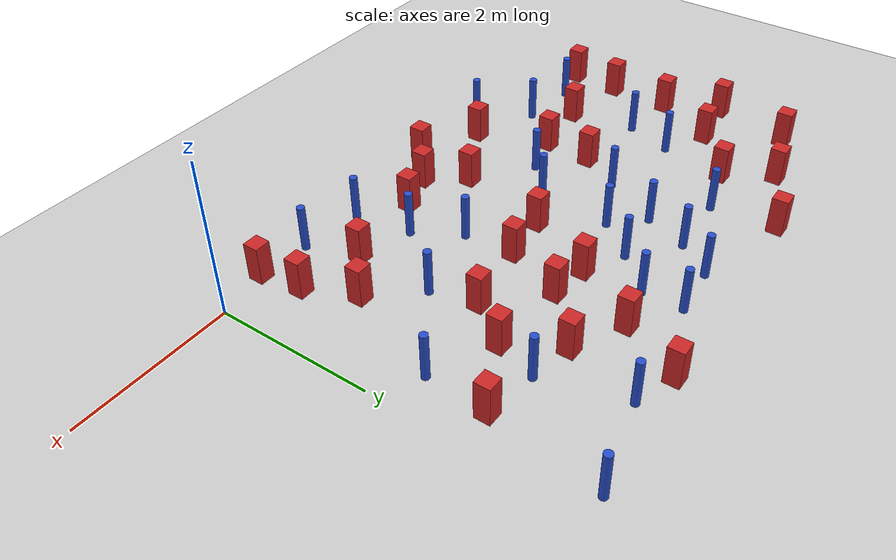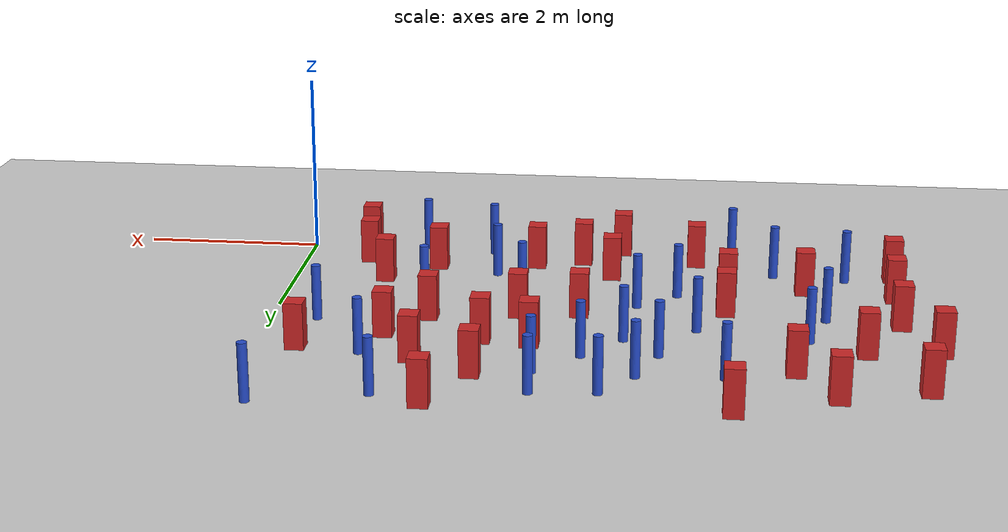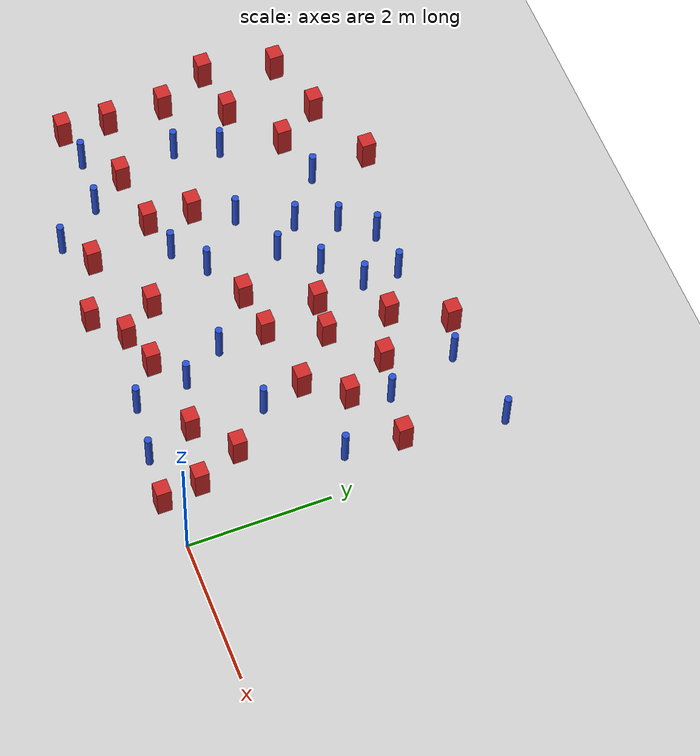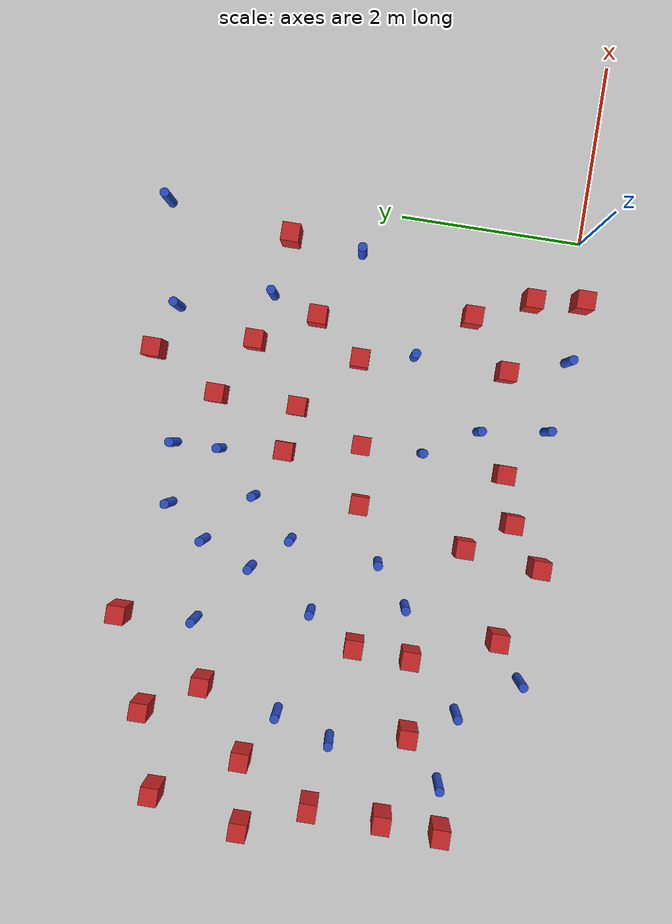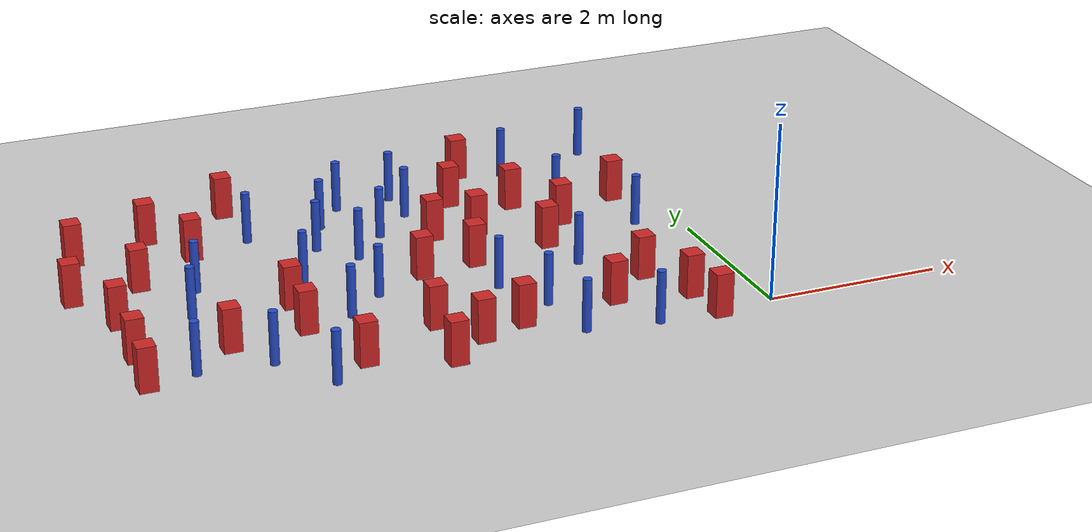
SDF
<sdf version="1.6">
 <world name="default">
  <model name="ground_plane">
   <static>1</static>
   <link name="link">
    <collision name="collision">
     <geometry><plane><normal>0 0 1</normal><size>100 100</size></plane></geometry>
     <surface><friction><ode><mu>100</mu><mu2>50</mu2></ode></friction></surface>
    </collision>
    <visual name="visual">
     <cast_shadows>0</cast_shadows>
     <geometry><plane><normal>0 0 1</normal><size>100 100</size></plane></geometry>
     <material>
      <ambient>1.0 1.0 1.0 1.0</ambient>
      <diffuse>0.8 0.8 0.8 1.0</diffuse>
      <specular>0.01 0.01 0.01 1.000000</specular>
     </material>
    </visual>
   </link>
  </model>
  <model name="pole_obstacle3">
   <static>true</static>
   <pose>-4.10674583916 3.05079004273 2.88873142074e-08 -9.90536690245e-09 4.6021994898e-07 -1.20965994966e-07</pose>
   <link name="link">
    <pose>0 0 0.3 0 -0 0</pose>
    <inertial>
     <mass>1</mass>
     <inertia><ixx>0.145833</ixx><ixy>0</ixy><ixz>0</ixz><iyy>0.145833</iyy><iyz>0</iyz><izz>0.125</izz></inertia>
    </inertial>
    <collision name="collision">
     <geometry><cylinder><radius>0.05</radius><length>.6</length></cylinder></geometry>
    </collision>
    <visual name="visual">
     <geometry><cylinder><radius>0.05</radius><length>.6</length></cylinder></geometry>
     <material>
      <script><name>Gazebo/Blue</name><uri>file://media/materials/scripts/gazebo.material</uri></script>
     </material>
    </visual>
   </link>
  </model>
  <model name="square_post_obstacle6">
   <static>true</static>
   <pose>-0.735743962534 0.444639540895 8.22691968438e-08 7.22125133819e-06 -7.54495500217e-07 2.29674213826e-05</pose>
   <link name="link">
    <pose>0 0 0.25 0 -0 0</pose>
    <inertial>
     <mass>100</mass>
     <inertia>
      <ixx>0.166667</ixx>
      <ixy>0</ixy>
      <ixz>0</ixz>
      <iyy>0.166667</iyy>
      <iyz>0</iyz>
      <izz>0.166667</izz>
     </inertia>
    </inertial>
    <collision name="collision"><geometry><box><size>.2 .2 .5</size></box></geometry></collision>
    <visual name="visual">
     <geometry><box><size>.2 .2 .5</size></box></geometry>
     <material>
      <script><name>Gazebo/Red</name><uri>file://media/materials/scripts/gazebo.material</uri></script>
     </material>
    </visual>
   </link>
  </model>
  <model name="pole_obstacle18">
   <static>true</static>
   <pose>-1.53342866572 1.62815825312 2.88873142074e-08 -9.90536689672e-09 4.60219948993e-07 -1.20965994959e-07</pose>
   <link name="link">
    <pose>0 0 0.3 0 -0 0</pose>
    <inertial>
     <mass>1</mass>
     <inertia><ixx>0.145833</ixx><ixy>0</ixy><ixz>0</ixz><iyy>0.145833</iyy><iyz>0</iyz><izz>0.125</izz></inertia>
    </inertial>
    <collision name="collision">
     <geometry><cylinder><radius>0.05</radius><length>.6</length></cylinder></geometry>
    </collision>
    <visual name="visual">
     <geometry><cylinder><radius>0.05</radius><length>.6</length></cylinder></geometry>
     <material>
      <script><name>Gazebo/Blue</name><uri>file://media/materials/scripts/gazebo.material</uri></script>
     </material>
    </visual>
   </link>
  </model>
  <model name="square_post_obstacle16">
   <static>true</static>
   <pose>-1.63647369609 3.38660637398 8.22691968438e-08 7.2212513382e-06 -7.54495500217e-07 2.29674213826e-05</pose>
   <link name="link">
    <pose>0 0 0.25 0 -0 0</pose>
    <inertial>
     <mass>100</mass>
     <inertia>
      <ixx>0.166667</ixx>
      <ixy>0</ixy>
      <ixz>0</ixz>
      <iyy>0.166667</iyy>
      <iyz>0</iyz>
      <izz>0.166667</izz>
     </inertia>
    </inertial>
    <collision name="collision"><geometry><box><size>.2 .2 .5</size></box></geometry></collision>
    <visual name="visual">
     <geometry><box><size>.2 .2 .5</size></box></geometry>
     <material>
      <script><name>Gazebo/Red</name><uri>file://media/materials/scripts/gazebo.material</uri></script>
     </material>
    </visual>
   </link>
  </model>
  <model name="pole_obstacle23">
   <static>true</static>
   <pose>-2.13196172156 0.0598625414615 2.88873142074e-08 -9.905366921e-09 4.60219948936e-07 -1.20965994985e-07</pose>
   <link name="link">
    <pose>0 0 0.3 0 -0 0</pose>
    <inertial>
     <mass>1</mass>
     <inertia><ixx>0.145833</ixx><ixy>0</ixy><ixz>0</ixz><iyy>0.145833</iyy><iyz>0</iyz><izz>0.125</izz></inertia>
    </inertial>
    <collision name="collision">
     <geometry><cylinder><radius>0.05</radius><length>.6</length></cylinder></geometry>
    </collision>
    <visual name="visual">
     <geometry><cylinder><radius>0.05</radius><length>.6</length></cylinder></geometry>
     <material>
      <script><name>Gazebo/Blue</name><uri>file://media/materials/scripts/gazebo.material</uri></script>
     </material>
    </visual>
   </link>
  </model>
  <model name="square_post_obstacle18">
   <static>true</static>
   <pose>-0.437730830458 3.17416483914 8.22691968438e-08 7.2212513382e-06 -7.54495500217e-07 2.29674213826e-05</pose>
   <link name="link">
    <pose>0 0 0.25 0 -0 0</pose>
    <inertial>
     <mass>100</mass>
     <inertia>
      <ixx>0.166667</ixx>
      <ixy>0</ixy>
      <ixz>0</ixz>
      <iyy>0.166667</iyy>
      <iyz>0</iyz>
      <izz>0.166667</izz>
     </inertia>
    </inertial>
    <collision name="collision"><geometry><box><size>.2 .2 .5</size></box></geometry></collision>
    <visual name="visual">
     <geometry><box><size>.2 .2 .5</size></box></geometry>
     <material>
      <script><name>Gazebo/Red</name><uri>file://media/materials/scripts/gazebo.material</uri></script>
     </material>
    </visual>
   </link>
  </model>
  <model name="pole_obstacle27">
   <static>true</static>
   <pose>-3.32773797094 3.13521711102 2.88873142074e-08 -9.90536689597e-09 4.60219948995e-07 -1.20965994957e-07</pose>
   <link name="link">
    <pose>0 0 0.3 0 -0 0</pose>
    <inertial>
     <mass>1</mass>
     <inertia><ixx>0.145833</ixx><ixy>0</ixy><ixz>0</ixz><iyy>0.145833</iyy><iyz>0</iyz><izz>0.125</izz></inertia>
    </inertial>
    <collision name="collision">
     <geometry><cylinder><radius>0.05</radius><length>.6</length></cylinder></geometry>
    </collision>
    <visual name="visual">
     <geometry><cylinder><radius>0.05</radius><length>.6</length></cylinder></geometry>
     <material>
      <script><name>Gazebo/Blue</name><uri>file://media/materials/scripts/gazebo.material</uri></script>
     </material>
    </visual>
   </link>
  </model>
  <model name="pole_obstacle28">
   <static>true</static>
   <pose>-3.73848227243 2.66122329755 2.88873142074e-08 -9.90536690232e-09 4.6021994898e-07 -1.20965994968e-07</pose>
   <link name="link">
    <pose>0 0 0.3 0 -0 0</pose>
    <inertial>
     <mass>1</mass>
     <inertia><ixx>0.145833</ixx><ixy>0</ixy><ixz>0</ixz><iyy>0.145833</iyy><iyz>0</iyz><izz>0.125</izz></inertia>
    </inertial>
    <collision name="collision">
     <geometry><cylinder><radius>0.05</radius><length>.6</length></cylinder></geometry>
    </collision>
    <visual name="visual">
     <geometry><cylinder><radius>0.05</radius><length>.6</length></cylinder></geometry>
     <material>
      <script><name>Gazebo/Blue</name><uri>file://media/materials/scripts/gazebo.material</uri></script>
     </material>
    </visual>
   </link>
  </model>
  <model name="pole_obstacle32">
   <static>true</static>
   <pose>-1.09983898495 3.27370985096 2.88873142074e-08 -9.90536689791e-09 4.6021994899e-07 -1.20965994959e-07</pose>
   <link name="link">
    <pose>0 0 0.3 0 -0 0</pose>
    <inertial>
     <mass>1</mass>
     <inertia><ixx>0.145833</ixx><ixy>0</ixy><ixz>0</ixz><iyy>0.145833</iyy><iyz>0</iyz><izz>0.125</izz></inertia>
    </inertial>
    <collision name="collision">
     <geometry><cylinder><radius>0.05</radius><length>.6</length></cylinder></geometry>
    </collision>
    <visual name="visual">
     <geometry><cylinder><radius>0.05</radius><length>.6</length></cylinder></geometry>
     <material>
      <script><name>Gazebo/Blue</name><uri>file://media/materials/scripts/gazebo.material</uri></script>
     </material>
    </visual>
   </link>
  </model>
  <model name="square_post_obstacle30">
   <static>true</static>
   <pose>-5.45220283044 3.37960978161 8.22691968438e-08 7.2212513382e-06 -7.54495500217e-07 2.29674213826e-05</pose>
   <link name="link">
    <pose>0 0 0.25 0 -0 0</pose>
    <inertial>
     <mass>100</mass>
     <inertia>
      <ixx>0.166667</ixx>
      <ixy>0</ixy>
      <ixz>0</ixz>
      <iyy>0.166667</iyy>
      <iyz>0</iyz>
      <izz>0.166667</izz>
     </inertia>
    </inertial>
    <collision name="collision"><geometry><box><size>.2 .2 .5</size></box></geometry></collision>
    <visual name="visual">
     <geometry><box><size>.2 .2 .5</size></box></geometry>
     <material>
      <script><name>Gazebo/Red</name><uri>file://media/materials/scripts/gazebo.material</uri></script>
     </material>
    </visual>
   </link>
  </model>
  <model name="pole_obstacle39">
   <static>true</static>
   <pose>-3.84629963478 1.67471542373 2.88873142074e-08 -9.90536691123e-09 4.60219948959e-07 -1.20965994982e-07</pose>
   <link name="link">
    <pose>0 0 0.3 0 -0 0</pose>
    <inertial>
     <mass>1</mass>
     <inertia><ixx>0.145833</ixx><ixy>0</ixy><ixz>0</ixz><iyy>0.145833</iyy><iyz>0</iyz><izz>0.125</izz></inertia>
    </inertial>
    <collision name="collision">
     <geometry><cylinder><radius>0.05</radius><length>.6</length></cylinder></geometry>
    </collision>
    <visual name="visual">
     <geometry><cylinder><radius>0.05</radius><length>.6</length></cylinder></geometry>
     <material>
      <script><name>Gazebo/Blue</name><uri>file://media/materials/scripts/gazebo.material</uri></script>
     </material>
    </visual>
   </link>
  </model>
  <model name="pole_obstacle45">
   <static>true</static>
   <pose>-0.49435911622 2.37617971023 2.88873142074e-08 -9.90536689335e-09 4.60219949001e-07 -1.20965994953e-07</pose>
   <link name="link">
    <pose>0 0 0.3 0 -0 0</pose>
    <inertial>
     <mass>1</mass>
     <inertia><ixx>0.145833</ixx><ixy>0</ixy><ixz>0</ixz><iyy>0.145833</iyy><iyz>0</iyz><izz>0.125</izz></inertia>
    </inertial>
    <collision name="collision">
     <geometry><cylinder><radius>0.05</radius><length>.6</length></cylinder></geometry>
    </collision>
    <visual name="visual">
     <geometry><cylinder><radius>0.05</radius><length>.6</length></cylinder></geometry>
     <material>
      <script><name>Gazebo/Blue</name><uri>file://media/materials/scripts/gazebo.material</uri></script>
     </material>
    </visual>
   </link>
  </model>
  <model name="pole_obstacle46">
   <static>true</static>
   <pose>-4.88841886065 -0.0654090124755 2.88873142074e-08 -9.90536689153e-09 4.60219949006e-07 -1.20965994951e-07</pose>
   <link name="link">
    <pose>0 0 0.3 0 -0 0</pose>
    <inertial>
     <mass>1</mass>
     <inertia><ixx>0.145833</ixx><ixy>0</ixy><ixz>0</ixz><iyy>0.145833</iyy><iyz>0</iyz><izz>0.125</izz></inertia>
    </inertial>
    <collision name="collision">
     <geometry><cylinder><radius>0.05</radius><length>.6</length></cylinder></geometry>
    </collision>
    <visual name="visual">
     <geometry><cylinder><radius>0.05</radius><length>.6</length></cylinder></geometry>
     <material>
      <script><name>Gazebo/Blue</name><uri>file://media/materials/scripts/gazebo.material</uri></script>
     </material>
    </visual>
   </link>
  </model>
  <model name="square_post_obstacle38">
   <static>true</static>
   <pose>-2.67124182964 0.458269744932 8.22691968438e-08 7.2212513382e-06 -7.54495500217e-07 2.29674213826e-05</pose>
   <link name="link">
    <pose>0 0 0.25 0 -0 0</pose>
    <inertial>
     <mass>100</mass>
     <inertia>
      <ixx>0.166667</ixx>
      <ixy>0</ixy>
      <ixz>0</ixz>
      <iyy>0.166667</iyy>
      <iyz>0</iyz>
      <izz>0.166667</izz>
     </inertia>
    </inertial>
    <collision name="collision"><geometry><box><size>.2 .2 .5</size></box></geometry></collision>
    <visual name="visual">
     <geometry><box><size>.2 .2 .5</size></box></geometry>
     <material>
      <script><name>Gazebo/Red</name><uri>file://media/materials/scripts/gazebo.material</uri></script>
     </material>
    </visual>
   </link>
  </model>
  <model name="pole_obstacle53">
   <static>true</static>
   <pose>-2.58020359155 1.38475533536 2.88873142074e-08 -9.90536689395e-09 4.60219949e-07 -1.20965994953e-07</pose>
   <link name="link">
    <pose>0 0 0.3 0 -0 0</pose>
    <inertial>
     <mass>1</mass>
     <inertia><ixx>0.145833</ixx><ixy>0</ixy><ixz>0</ixz><iyy>0.145833</iyy><iyz>0</iyz><izz>0.125</izz></inertia>
    </inertial>
    <collision name="collision">
     <geometry><cylinder><radius>0.05</radius><length>.6</length></cylinder></geometry>
    </collision>
    <visual name="visual">
     <geometry><cylinder><radius>0.05</radius><length>.6</length></cylinder></geometry>
     <material>
      <script><name>Gazebo/Blue</name><uri>file://media/materials/scripts/gazebo.material</uri></script>
     </material>
    </visual>
   </link>
  </model>
  <model name="square_post_obstacle43">
   <static>true</static>
   <pose>-6.93882678375 2.72785230676 8.22691968438e-08 7.2212513382e-06 -7.54495500217e-07 2.29674213826e-05</pose>
   <link name="link">
    <pose>0 0 0.25 0 -0 0</pose>
    <inertial>
     <mass>100</mass>
     <inertia>
      <ixx>0.166667</ixx>
      <ixy>0</ixy>
      <ixz>0</ixz>
      <iyy>0.166667</iyy>
      <iyz>0</iyz>
      <izz>0.166667</izz>
     </inertia>
    </inertial>
    <collision name="collision"><geometry><box><size>.2 .2 .5</size></box></geometry></collision>
    <visual name="visual">
     <geometry><box><size>.2 .2 .5</size></box></geometry>
     <material>
      <script><name>Gazebo/Red</name><uri>file://media/materials/scripts/gazebo.material</uri></script>
     </material>
    </visual>
   </link>
  </model>
  <model name="pole_obstacle60">
   <static>true</static>
   <pose>-1.38868517463 4.28813172628 2.88873142074e-08 -9.90536689852e-09 4.60219948989e-07 -1.2096599496e-07</pose>
   <link name="link">
    <pose>0 0 0.3 0 -0 0</pose>
    <inertial>
     <mass>1</mass>
     <inertia><ixx>0.145833</ixx><ixy>0</ixy><ixz>0</ixz><iyy>0.145833</iyy><iyz>0</iyz><izz>0.125</izz></inertia>
    </inertial>
    <collision name="collision">
     <geometry><cylinder><radius>0.05</radius><length>.6</length></cylinder></geometry>
    </collision>
    <visual name="visual">
     <geometry><cylinder><radius>0.05</radius><length>.6</length></cylinder></geometry>
     <material>
      <script><name>Gazebo/Blue</name><uri>file://media/materials/scripts/gazebo.material</uri></script>
     </material>
    </visual>
   </link>
  </model>
  <model name="square_post_obstacle51">
   <static>true</static>
   <pose>-2.59960331723 2.05706593204 8.22691968438e-08 7.2212513382e-06 -7.54495500217e-07 2.29674213826e-05</pose>
   <link name="link">
    <pose>0 0 0.25 0 -0 0</pose>
    <inertial>
     <mass>100</mass>
     <inertia>
      <ixx>0.166667</ixx>
      <ixy>0</ixy>
      <ixz>0</ixz>
      <iyy>0.166667</iyy>
      <iyz>0</iyz>
      <izz>0.166667</izz>
     </inertia>
    </inertial>
    <collision name="collision"><geometry><box><size>.2 .2 .5</size></box></geometry></collision>
    <visual name="visual">
     <geometry><box><size>.2 .2 .5</size></box></geometry>
     <material>
      <script><name>Gazebo/Red</name><uri>file://media/materials/scripts/gazebo.material</uri></script>
     </material>
    </visual>
   </link>
  </model>
  <model name="square_post_obstacle57">
   <static>true</static>
   <pose>-6.62308805226 1.19896967594 8.22691968438e-08 7.2212513382e-06 -7.54495500217e-07 2.29674213826e-05</pose>
   <link name="link">
    <pose>0 0 0.25 0 -0 0</pose>
    <inertial>
     <mass>100</mass>
     <inertia>
      <ixx>0.166667</ixx>
      <ixy>0</ixy>
      <ixz>0</ixz>
      <iyy>0.166667</iyy>
      <iyz>0</iyz>
      <izz>0.166667</izz>
     </inertia>
    </inertial>
    <collision name="collision"><geometry><box><size>.2 .2 .5</size></box></geometry></collision>
    <visual name="visual">
     <geometry><box><size>.2 .2 .5</size></box></geometry>
     <material>
      <script><name>Gazebo/Red</name><uri>file://media/materials/scripts/gazebo.material</uri></script>
     </material>
    </visual>
   </link>
  </model>
  <model name="square_post_obstacle63">
   <static>true</static>
   <pose>-5.65913044894 1.05992409231 8.22691968438e-08 7.2212513382e-06 -7.54495500217e-07 2.29674213826e-05</pose>
   <link name="link">
    <pose>0 0 0.25 0 -0 0</pose>
    <inertial>
     <mass>100</mass>
     <inertia>
      <ixx>0.166667</ixx>
      <ixy>0</ixy>
      <ixz>0</ixz>
      <iyy>0.166667</iyy>
      <iyz>0</iyz>
      <izz>0.166667</izz>
     </inertia>
    </inertial>
    <collision name="collision"><geometry><box><size>.2 .2 .5</size></box></geometry></collision>
    <visual name="visual">
     <geometry><box><size>.2 .2 .5</size></box></geometry>
     <material>
      <script><name>Gazebo/Red</name><uri>file://media/materials/scripts/gazebo.material</uri></script>
     </material>
    </visual>
   </link>
  </model>
  <model name="pole_obstacle76">
   <static>true</static>
   <pose>-2.247932141 0.802965704009 2.88873142074e-08 -9.90536689285e-09 4.60219949002e-07 -1.20965994953e-07</pose>
   <link name="link">
    <pose>0 0 0.3 0 -0 0</pose>
    <inertial>
     <mass>1</mass>
     <inertia><ixx>0.145833</ixx><ixy>0</ixy><ixz>0</ixz><iyy>0.145833</iyy><iyz>0</iyz><izz>0.125</izz></inertia>
    </inertial>
    <collision name="collision">
     <geometry><cylinder><radius>0.05</radius><length>.6</length></cylinder></geometry>
    </collision>
    <visual name="visual">
     <geometry><cylinder><radius>0.05</radius><length>.6</length></cylinder></geometry>
     <material>
      <script><name>Gazebo/Blue</name><uri>file://media/materials/scripts/gazebo.material</uri></script>
     </material>
    </visual>
   </link>
  </model>
  <model name="square_post_obstacle66">
   <static>true</static>
   <pose>-4.82388583449 4.39651531097 8.22691968438e-08 7.2212513382e-06 -7.54495500217e-07 2.29674213826e-05</pose>
   <link name="link">
    <pose>0 0 0.25 0 -0 0</pose>
    <inertial>
     <mass>100</mass>
     <inertia>
      <ixx>0.166667</ixx>
      <ixy>0</ixy>
      <ixz>0</ixz>
      <iyy>0.166667</iyy>
      <iyz>0</iyz>
      <izz>0.166667</izz>
     </inertia>
    </inertial>
    <collision name="collision"><geometry><box><size>.2 .2 .5</size></box></geometry></collision>
    <visual name="visual">
     <geometry><box><size>.2 .2 .5</size></box></geometry>
     <material>
      <script><name>Gazebo/Red</name><uri>file://media/materials/scripts/gazebo.material</uri></script>
     </material>
    </visual>
   </link>
  </model>
  <model name="pole_obstacle78">
   <static>true</static>
   <pose>-6.12994960305 0.644760309245 2.88873142074e-08 -9.90536689837e-09 4.60219948989e-07 -1.2096599496e-07</pose>
   <link name="link">
    <pose>0 0 0.3 0 -0 0</pose>
    <inertial>
     <mass>1</mass>
     <inertia><ixx>0.145833</ixx><ixy>0</ixy><ixz>0</ixz><iyy>0.145833</iyy><iyz>0</iyz><izz>0.125</izz></inertia>
    </inertial>
    <collision name="collision">
     <geometry><cylinder><radius>0.05</radius><length>.6</length></cylinder></geometry>
    </collision>
    <visual name="visual">
     <geometry><cylinder><radius>0.05</radius><length>.6</length></cylinder></geometry>
     <material>
      <script><name>Gazebo/Blue</name><uri>file://media/materials/scripts/gazebo.material</uri></script>
     </material>
    </visual>
   </link>
  </model>
  <model name="square_post_obstacle71">
   <static>true</static>
   <pose>-6.18642034534 2.82569942338 8.22691968438e-08 7.2212513382e-06 -7.54495500217e-07 2.29674213826e-05</pose>
   <link name="link">
    <pose>0 0 0.25 0 -0 0</pose>
    <inertial>
     <mass>100</mass>
     <inertia>
      <ixx>0.166667</ixx>
      <ixy>0</ixy>
      <ixz>0</ixz>
      <iyy>0.166667</iyy>
      <iyz>0</iyz>
      <izz>0.166667</izz>
     </inertia>
    </inertial>
    <collision name="collision"><geometry><box><size>.2 .2 .5</size></box></geometry></collision>
    <visual name="visual">
     <geometry><box><size>.2 .2 .5</size></box></geometry>
     <material>
      <script><name>Gazebo/Red</name><uri>file://media/materials/scripts/gazebo.material</uri></script>
     </material>
    </visual>
   </link>
  </model>
  <model name="pole_obstacle86">
   <static>true</static>
   <pose>-0.249711931008 4.56645546046 2.88873142074e-08 -9.90536689703e-09 4.60219948992e-07 -1.20965994959e-07</pose>
   <link name="link">
    <pose>0 0 0.3 0 -0 0</pose>
    <inertial>
     <mass>1</mass>
     <inertia><ixx>0.145833</ixx><ixy>0</ixy><ixz>0</ixz><iyy>0.145833</iyy><iyz>0</iyz><izz>0.125</izz></inertia>
    </inertial>
    <collision name="collision">
     <geometry><cylinder><radius>0.05</radius><length>.6</length></cylinder></geometry>
    </collision>
    <visual name="visual">
     <geometry><cylinder><radius>0.05</radius><length>.6</length></cylinder></geometry>
     <material>
      <script><name>Gazebo/Blue</name><uri>file://media/materials/scripts/gazebo.material</uri></script>
     </material>
    </visual>
   </link>
  </model>
  <model name="square_post_obstacle75">
   <static>true</static>
   <pose>-6.60966170065 2.01193946252 8.22691968438e-08 7.2212513382e-06 -7.54495500217e-07 2.29674213826e-05</pose>
   <link name="link">
    <pose>0 0 0.25 0 -0 0</pose>
    <inertial>
     <mass>100</mass>
     <inertia>
      <ixx>0.166667</ixx>
      <ixy>0</ixy>
      <ixz>0</ixz>
      <iyy>0.166667</iyy>
      <iyz>0</iyz>
      <izz>0.166667</izz>
     </inertia>
    </inertial>
    <collision name="collision"><geometry><box><size>.2 .2 .5</size></box></geometry></collision>
    <visual name="visual">
     <geometry><box><size>.2 .2 .5</size></box></geometry>
     <material>
      <script><name>Gazebo/Red</name><uri>file://media/materials/scripts/gazebo.material</uri></script>
     </material>
    </visual>
   </link>
  </model>
  <model name="pole_obstacle90">
   <static>true</static>
   <pose>-4.7634091951 3.56525711923 2.88873142074e-08 -9.90536690245e-09 4.6021994898e-07 -1.20965994966e-07</pose>
   <link name="link">
    <pose>0 0 0.3 0 -0 0</pose>
    <inertial>
     <mass>1</mass>
     <inertia><ixx>0.145833</ixx><ixy>0</ixy><ixz>0</ixz><iyy>0.145833</iyy><iyz>0</iyz><izz>0.125</izz></inertia>
    </inertial>
    <collision name="collision">
     <geometry><cylinder><radius>0.05</radius><length>.6</length></cylinder></geometry>
    </collision>
    <visual name="visual">
     <geometry><cylinder><radius>0.05</radius><length>.6</length></cylinder></geometry>
     <material>
      <script><name>Gazebo/Blue</name><uri>file://media/materials/scripts/gazebo.material</uri></script>
     </material>
    </visual>
   </link>
  </model>
  <model name="pole_obstacle95">
   <static>true</static>
   <pose>-4.27576008164 1.30549020211 2.88873142074e-08 -9.90536689445e-09 4.60219948999e-07 -1.20965994956e-07</pose>
   <link name="link">
    <pose>0 0 0.3 0 -0 0</pose>
    <inertial>
     <mass>1</mass>
     <inertia><ixx>0.145833</ixx><ixy>0</ixy><ixz>0</ixz><iyy>0.145833</iyy><iyz>0</iyz><izz>0.125</izz></inertia>
    </inertial>
    <collision name="collision">
     <geometry><cylinder><radius>0.05</radius><length>.6</length></cylinder></geometry>
    </collision>
    <visual name="visual">
     <geometry><cylinder><radius>0.05</radius><length>.6</length></cylinder></geometry>
     <material>
      <script><name>Gazebo/Blue</name><uri>file://media/materials/scripts/gazebo.material</uri></script>
     </material>
    </visual>
   </link>
  </model>
  <model name="square_post_obstacle88">
   <static>true</static>
   <pose>-6.66203473205 0.542781461975 8.22691968438e-08 7.22125133819e-06 -7.54495500217e-07 2.29674213826e-05</pose>
   <link name="link">
    <pose>0 0 0.25 0 -0 0</pose>
    <inertial>
     <mass>100</mass>
     <inertia>
      <ixx>0.166667</ixx>
      <ixy>0</ixy>
      <ixz>0</ixz>
      <iyy>0.166667</iyy>
      <iyz>0</iyz>
      <izz>0.166667</izz>
     </inertia>
    </inertial>
    <collision name="collision"><geometry><box><size>.2 .2 .5</size></box></geometry></collision>
    <visual name="visual">
     <geometry><box><size>.2 .2 .5</size></box></geometry>
     <material>
      <script><name>Gazebo/Red</name><uri>file://media/materials/scripts/gazebo.material</uri></script>
     </material>
    </visual>
   </link>
  </model>
  <model name="square_post_obstacle100">
   <static>true</static>
   <pose>-1.26960463572 2.74692913427 8.22691968438e-08 7.2212513382e-06 -7.54495500217e-07 2.29674213826e-05</pose>
   <link name="link">
    <pose>0 0 0.25 0 -0 0</pose>
    <inertial>
     <mass>100</mass>
     <inertia>
      <ixx>0.166667</ixx>
      <ixy>0</ixy>
      <ixz>0</ixz>
      <iyy>0.166667</iyy>
      <iyz>0</iyz>
      <izz>0.166667</izz>
     </inertia>
    </inertial>
    <collision name="collision"><geometry><box><size>.2 .2 .5</size></box></geometry></collision>
    <visual name="visual">
     <geometry><box><size>.2 .2 .5</size></box></geometry>
     <material>
      <script><name>Gazebo/Red</name><uri>file://media/materials/scripts/gazebo.material</uri></script>
     </material>
    </visual>
   </link>
  </model>
  <model name="square_post_obstacle105">
   <static>true</static>
   <pose>-1.89715746914 4.46829815455 8.22691968438e-08 7.2212513382e-06 -7.54495500217e-07 2.29674213826e-05</pose>
   <link name="link">
    <pose>0 0 0.25 0 -0 0</pose>
    <inertial>
     <mass>100</mass>
     <inertia>
      <ixx>0.166667</ixx>
      <ixy>0</ixy>
      <ixz>0</ixz>
      <iyy>0.166667</iyy>
      <iyz>0</iyz>
      <izz>0.166667</izz>
     </inertia>
    </inertial>
    <collision name="collision"><geometry><box><size>.2 .2 .5</size></box></geometry></collision>
    <visual name="visual">
     <geometry><box><size>.2 .2 .5</size></box></geometry>
     <material>
      <script><name>Gazebo/Red</name><uri>file://media/materials/scripts/gazebo.material</uri></script>
     </material>
    </visual>
   </link>
  </model>
  <model name="pole_obstacle114">
   <static>true</static>
   <pose>-5.3416488193 0.571486314073 2.88873142074e-08 -9.90536689837e-09 4.60219948989e-07 -1.2096599496e-07</pose>
   <link name="link">
    <pose>0 0 0.3 0 -0 0</pose>
    <inertial>
     <mass>1</mass>
     <inertia><ixx>0.145833</ixx><ixy>0</ixy><ixz>0</ixz><iyy>0.145833</iyy><iyz>0</iyz><izz>0.125</izz></inertia>
    </inertial>
    <collision name="collision">
     <geometry><cylinder><radius>0.05</radius><length>.6</length></cylinder></geometry>
    </collision>
    <visual name="visual">
     <geometry><cylinder><radius>0.05</radius><length>.6</length></cylinder></geometry>
     <material>
      <script><name>Gazebo/Blue</name><uri>file://media/materials/scripts/gazebo.material</uri></script>
     </material>
    </visual>
   </link>
  </model>
  <model name="pole_obstacle115">
   <static>true</static>
   <pose>-2.88422750433 4.09584179187 2.88873142074e-08 -9.90536689859e-09 4.60219948989e-07 -1.20965994961e-07</pose>
   <link name="link">
    <pose>0 0 0.3 0 -0 0</pose>
    <inertial>
     <mass>1</mass>
     <inertia><ixx>0.145833</ixx><ixy>0</ixy><ixz>0</ixz><iyy>0.145833</iyy><iyz>0</iyz><izz>0.125</izz></inertia>
    </inertial>
    <collision name="collision">
     <geometry><cylinder><radius>0.05</radius><length>.6</length></cylinder></geometry>
    </collision>
    <visual name="visual">
     <geometry><cylinder><radius>0.05</radius><length>.6</length></cylinder></geometry>
     <material>
      <script><name>Gazebo/Blue</name><uri>file://media/materials/scripts/gazebo.material</uri></script>
     </material>
    </visual>
   </link>
  </model>
  <model name="square_post_obstacle112">
   <static>true</static>
   <pose>-3.1901020987 0.289295298862 8.22691968438e-08 7.2212513382e-06 -7.54495500217e-07 2.29674213826e-05</pose>
   <link name="link">
    <pose>0 0 0.25 0 -0 0</pose>
    <inertial>
     <mass>100</mass>
     <inertia>
      <ixx>0.166667</ixx>
      <ixy>0</ixy>
      <ixz>0</ixz>
      <iyy>0.166667</iyy>
      <iyz>0</iyz>
      <izz>0.166667</izz>
     </inertia>
    </inertial>
    <collision name="collision"><geometry><box><size>.2 .2 .5</size></box></geometry></collision>
    <visual name="visual">
     <geometry><box><size>.2 .2 .5</size></box></geometry>
     <material>
      <script><name>Gazebo/Red</name><uri>file://media/materials/scripts/gazebo.material</uri></script>
     </material>
    </visual>
   </link>
  </model>
  <model name="pole_obstacle123">
   <static>true</static>
   <pose>-3.54899356851 4.04159951886 2.88873142074e-08 -9.90536689848e-09 4.60219948989e-07 -1.20965994961e-07</pose>
   <link name="link">
    <pose>0 0 0.3 0 -0 0</pose>
    <inertial>
     <mass>1</mass>
     <inertia><ixx>0.145833</ixx><ixy>0</ixy><ixz>0</ixz><iyy>0.145833</iyy><iyz>0</iyz><izz>0.125</izz></inertia>
    </inertial>
    <collision name="collision">
     <geometry><cylinder><radius>0.05</radius><length>.6</length></cylinder></geometry>
    </collision>
    <visual name="visual">
     <geometry><cylinder><radius>0.05</radius><length>.6</length></cylinder></geometry>
     <material>
      <script><name>Gazebo/Blue</name><uri>file://media/materials/scripts/gazebo.material</uri></script>
     </material>
    </visual>
   </link>
  </model>
  <model name="square_post_obstacle126">
   <static>true</static>
   <pose>-2.28479332848 2.81382406977 8.22691968438e-08 7.2212513382e-06 -7.54495500217e-07 2.29674213826e-05</pose>
   <link name="link">
    <pose>0 0 0.25 0 -0 0</pose>
    <inertial>
     <mass>100</mass>
     <inertia>
      <ixx>0.166667</ixx>
      <ixy>0</ixy>
      <ixz>0</ixz>
      <iyy>0.166667</iyy>
      <iyz>0</iyz>
      <izz>0.166667</izz>
     </inertia>
    </inertial>
    <collision name="collision"><geometry><box><size>.2 .2 .5</size></box></geometry></collision>
    <visual name="visual">
     <geometry><box><size>.2 .2 .5</size></box></geometry>
     <material>
      <script><name>Gazebo/Red</name><uri>file://media/materials/scripts/gazebo.material</uri></script>
     </material>
    </visual>
   </link>
  </model>
  <model name="square_post_obstacle132">
   <static>true</static>
   <pose>-4.47793512358 0.243590402728 8.22691968438e-08 7.2212513382e-06 -7.54495500217e-07 2.29674213826e-05</pose>
   <link name="link">
    <pose>0 0 0.25 0 -0 0</pose>
    <inertial>
     <mass>100</mass>
     <inertia>
      <ixx>0.166667</ixx>
      <ixy>0</ixy>
      <ixz>0</ixz>
      <iyy>0.166667</iyy>
      <iyz>0</iyz>
      <izz>0.166667</izz>
     </inertia>
    </inertial>
    <collision name="collision"><geometry><box><size>.2 .2 .5</size></box></geometry></collision>
    <visual name="visual">
     <geometry><box><size>.2 .2 .5</size></box></geometry>
     <material>
      <script><name>Gazebo/Red</name><uri>file://media/materials/scripts/gazebo.material</uri></script>
     </material>
    </visual>
   </link>
  </model>
  <model name="square_post_obstacle134">
   <static>true</static>
   <pose>-1.55775348675 0.60726395887 8.22691968438e-08 7.2212513382e-06 -7.54495500217e-07 2.29674213826e-05</pose>
   <link name="link">
    <pose>0 0 0.25 0 -0 0</pose>
    <inertial>
     <mass>100</mass>
     <inertia>
      <ixx>0.166667</ixx>
      <ixy>0</ixy>
      <ixz>0</ixz>
      <iyy>0.166667</iyy>
      <iyz>0</iyz>
      <izz>0.166667</izz>
     </inertia>
    </inertial>
    <collision name="collision"><geometry><box><size>.2 .2 .5</size></box></geometry></collision>
    <visual name="visual">
     <geometry><box><size>.2 .2 .5</size></box></geometry>
     <material>
      <script><name>Gazebo/Red</name><uri>file://media/materials/scripts/gazebo.material</uri></script>
     </material>
    </visual>
   </link>
  </model>
  <model name="square_post_obstacle135">
   <static>true</static>
   <pose>-3.24389126264 1.97745841485 8.22691968438e-08 7.2212513382e-06 -7.54495500217e-07 2.29674213826e-05</pose>
   <link name="link">
    <pose>0 0 0.25 0 -0 0</pose>
    <inertial>
     <mass>100</mass>
     <inertia>
      <ixx>0.166667</ixx>
      <ixy>0</ixy>
      <ixz>0</ixz>
      <iyy>0.166667</iyy>
      <iyz>0</iyz>
      <izz>0.166667</izz>
     </inertia>
    </inertial>
    <collision name="collision"><geometry><box><size>.2 .2 .5</size></box></geometry></collision>
    <visual name="visual">
     <geometry><box><size>.2 .2 .5</size></box></geometry>
     <material>
      <script><name>Gazebo/Red</name><uri>file://media/materials/scripts/gazebo.material</uri></script>
     </material>
    </visual>
   </link>
  </model>
  <model name="square_post_obstacle138">
   <static>true</static>
   <pose>-3.53706490525 0.768757842411 8.22691968438e-08 7.2212513382e-06 -7.54495500217e-07 2.29674213826e-05</pose>
   <link name="link">
    <pose>0 0 0.25 0 -0 0</pose>
    <inertial>
     <mass>100</mass>
     <inertia>
      <ixx>0.166667</ixx>
      <ixy>0</ixy>
      <ixz>0</ixz>
      <iyy>0.166667</iyy>
      <iyz>0</iyz>
      <izz>0.166667</izz>
     </inertia>
    </inertial>
    <collision name="collision"><geometry><box><size>.2 .2 .5</size></box></geometry></collision>
    <visual name="visual">
     <geometry><box><size>.2 .2 .5</size></box></geometry>
     <material>
      <script><name>Gazebo/Red</name><uri>file://media/materials/scripts/gazebo.material</uri></script>
     </material>
    </visual>
   </link>
  </model>
  <model name="square_post_obstacle146">
   <static>true</static>
   <pose>-2.28202184131 3.71344583962 8.22691968438e-08 7.2212513382e-06 -7.54495500217e-07 2.29674213826e-05</pose>
   <link name="link">
    <pose>0 0 0.25 0 -0 0</pose>
    <inertial>
     <mass>100</mass>
     <inertia>
      <ixx>0.166667</ixx>
      <ixy>0</ixy>
      <ixz>0</ixz>
      <iyy>0.166667</iyy>
      <iyz>0</iyz>
      <izz>0.166667</izz>
     </inertia>
    </inertial>
    <collision name="collision"><geometry><box><size>.2 .2 .5</size></box></geometry></collision>
    <visual name="visual">
     <geometry><box><size>.2 .2 .5</size></box></geometry>
     <material>
      <script><name>Gazebo/Red</name><uri>file://media/materials/scripts/gazebo.material</uri></script>
     </material>
    </visual>
   </link>
  </model>
  <model name="square_post_obstacle151">
   <static>true</static>
   <pose>-1.01469964467 1.07190476438 8.22691968438e-08 7.2212513382e-06 -7.54495500217e-07 2.29674213826e-05</pose>
   <link name="link">
    <pose>0 0 0.25 0 -0 0</pose>
    <inertial>
     <mass>100</mass>
     <inertia>
      <ixx>0.166667</ixx>
      <ixy>0</ixy>
      <ixz>0</ixz>
      <iyy>0.166667</iyy>
      <iyz>0</iyz>
      <izz>0.166667</izz>
     </inertia>
    </inertial>
    <collision name="collision"><geometry><box><size>.2 .2 .5</size></box></geometry></collision>
    <visual name="visual">
     <geometry><box><size>.2 .2 .5</size></box></geometry>
     <material>
      <script><name>Gazebo/Red</name><uri>file://media/materials/scripts/gazebo.material</uri></script>
     </material>
    </visual>
   </link>
  </model>
  <model name="pole_obstacle155">
   <static>true</static>
   <pose>-2.87022214497 3.58504094938 2.88873142074e-08 -9.90536690232e-09 4.6021994898e-07 -1.20965994968e-07</pose>
   <link name="link">
    <pose>0 0 0.3 0 -0 0</pose>
    <inertial>
     <mass>1</mass>
     <inertia><ixx>0.145833</ixx><ixy>0</ixy><ixz>0</ixz><iyy>0.145833</iyy><iyz>0</iyz><izz>0.125</izz></inertia>
    </inertial>
    <collision name="collision">
     <geometry><cylinder><radius>0.05</radius><length>.6</length></cylinder></geometry>
    </collision>
    <visual name="visual">
     <geometry><cylinder><radius>0.05</radius><length>.6</length></cylinder></geometry>
     <material>
      <script><name>Gazebo/Blue</name><uri>file://media/materials/scripts/gazebo.material</uri></script>
     </material>
    </visual>
   </link>
  </model>
  <model name="pole_obstacle161">
   <static>true</static>
   <pose>-5.84109880013 1.90248967707 2.88873142074e-08 -9.90536689445e-09 4.60219948999e-07 -1.20965994956e-07</pose>
   <link name="link">
    <pose>0 0 0.3 0 -0 0</pose>
    <inertial>
     <mass>1</mass>
     <inertia><ixx>0.145833</ixx><ixy>0</ixy><ixz>0</ixz><iyy>0.145833</iyy><iyz>0</iyz><izz>0.125</izz></inertia>
    </inertial>
    <collision name="collision">
     <geometry><cylinder><radius>0.05</radius><length>.6</length></cylinder></geometry>
    </collision>
    <visual name="visual">
     <geometry><cylinder><radius>0.05</radius><length>.6</length></cylinder></geometry>
     <material>
      <script><name>Gazebo/Blue</name><uri>file://media/materials/scripts/gazebo.material</uri></script>
     </material>
    </visual>
   </link>
  </model>
  <model name="square_post_obstacle157">
   <static>true</static>
   <pose>-2.79084209056 2.88003978099 8.22691968438e-08 7.2212513382e-06 -7.54495500217e-07 2.29674213826e-05</pose>
   <link name="link">
    <pose>0 0 0.25 0 -0 0</pose>
    <inertial>
     <mass>100</mass>
     <inertia>
      <ixx>0.166667</ixx>
      <ixy>0</ixy>
      <ixz>0</ixz>
      <iyy>0.166667</iyy>
      <iyz>0</iyz>
      <izz>0.166667</izz>
     </inertia>
    </inertial>
    <collision name="collision"><geometry><box><size>.2 .2 .5</size></box></geometry></collision>
    <visual name="visual">
     <geometry><box><size>.2 .2 .5</size></box></geometry>
     <material>
      <script><name>Gazebo/Red</name><uri>file://media/materials/scripts/gazebo.material</uri></script>
     </material>
    </visual>
   </link>
  </model>
  <model name="square_post_obstacle158">
   <static>true</static>
   <pose>-0.664996975662 -0.10051192825 8.22691968438e-08 7.2212513382e-06 -7.54495500217e-07 2.29674213826e-05</pose>
   <link name="link">
    <pose>0 0 0.25 0 -0 0</pose>
    <inertial>
     <mass>100</mass>
     <inertia>
      <ixx>0.166667</ixx>
      <ixy>0</ixy>
      <ixz>0</ixz>
      <iyy>0.166667</iyy>
      <iyz>0</iyz>
      <izz>0.166667</izz>
     </inertia>
    </inertial>
    <collision name="collision"><geometry><box><size>.2 .2 .5</size></box></geometry></collision>
    <visual name="visual">
     <geometry><box><size>.2 .2 .5</size></box></geometry>
     <material>
      <script><name>Gazebo/Red</name><uri>file://media/materials/scripts/gazebo.material</uri></script>
     </material>
    </visual>
   </link>
  </model>
  <model name="square_post_obstacle161">
   <static>true</static>
   <pose>-3.62818288514 -0.0822532809001 8.22691968438e-08 7.22125133819e-06 -7.54495500217e-07 2.29674213826e-05</pose>
   <link name="link">
    <pose>0 0 0.25 0 -0 0</pose>
    <inertial>
     <mass>100</mass>
     <inertia>
      <ixx>0.166667</ixx>
      <ixy>0</ixy>
      <ixz>0</ixz>
      <iyy>0.166667</iyy>
      <iyz>0</iyz>
      <izz>0.166667</izz>
     </inertia>
    </inertial>
    <collision name="collision"><geometry><box><size>.2 .2 .5</size></box></geometry></collision>
    <visual name="visual">
     <geometry><box><size>.2 .2 .5</size></box></geometry>
     <material>
      <script><name>Gazebo/Red</name><uri>file://media/materials/scripts/gazebo.material</uri></script>
     </material>
    </visual>
   </link>
  </model>
  <model name="square_post_obstacle166">
   <static>true</static>
   <pose>-4.79027834313 1.79485231091 8.22691968438e-08 7.2212513382e-06 -7.54495500217e-07 2.29674213826e-05</pose>
   <link name="link">
    <pose>0 0 0.25 0 -0 0</pose>
    <inertial>
     <mass>100</mass>
     <inertia>
      <ixx>0.166667</ixx>
      <ixy>0</ixy>
      <ixz>0</ixz>
      <iyy>0.166667</iyy>
      <iyz>0</iyz>
      <izz>0.166667</izz>
     </inertia>
    </inertial>
    <collision name="collision"><geometry><box><size>.2 .2 .5</size></box></geometry></collision>
    <visual name="visual">
     <geometry><box><size>.2 .2 .5</size></box></geometry>
     <material>
      <script><name>Gazebo/Red</name><uri>file://media/materials/scripts/gazebo.material</uri></script>
     </material>
    </visual>
   </link>
  </model>
  <model name="pole_obstacle169">
   <static>true</static>
   <pose>-5.63531545331 2.5155830265 2.88873142074e-08 -9.90536690245e-09 4.6021994898e-07 -1.20965994966e-07</pose>
   <link name="link">
    <pose>0 0 0.3 0 -0 0</pose>
    <inertial>
     <mass>1</mass>
     <inertia><ixx>0.145833</ixx><ixy>0</ixy><ixz>0</ixz><iyy>0.145833</iyy><iyz>0</iyz><izz>0.125</izz></inertia>
    </inertial>
    <collision name="collision">
     <geometry><cylinder><radius>0.05</radius><length>.6</length></cylinder></geometry>
    </collision>
    <visual name="visual">
     <geometry><cylinder><radius>0.05</radius><length>.6</length></cylinder></geometry>
     <material>
      <script><name>Gazebo/Blue</name><uri>file://media/materials/scripts/gazebo.material</uri></script>
     </material>
    </visual>
   </link>
  </model>
  <model name="square_post_obstacle189">
   <static>true</static>
   <pose>-5.82301065964 3.98842660026 8.22691968438e-08 7.2212513382e-06 -7.54495500217e-07 2.29674213826e-05</pose>
   <link name="link">
    <pose>0 0 0.25 0 -0 0</pose>
    <inertial>
     <mass>100</mass>
     <inertia>
      <ixx>0.166667</ixx>
      <ixy>0</ixy>
      <ixz>0</ixz>
      <iyy>0.166667</iyy>
      <iyz>0</iyz>
      <izz>0.166667</izz>
     </inertia>
    </inertial>
    <collision name="collision"><geometry><box><size>.2 .2 .5</size></box></geometry></collision>
    <visual name="visual">
     <geometry><box><size>.2 .2 .5</size></box></geometry>
     <material>
      <script><name>Gazebo/Red</name><uri>file://media/materials/scripts/gazebo.material</uri></script>
     </material>
    </visual>
   </link>
  </model>
  <model name="square_post_obstacle190">
   <static>true</static>
   <pose>-4.81922133687 1.1632814015 8.22691968438e-08 7.2212513382e-06 -7.54495500217e-07 2.29674213826e-05</pose>
   <link name="link">
    <pose>0 0 0.25 0 -0 0</pose>
    <inertial>
     <mass>100</mass>
     <inertia>
      <ixx>0.166667</ixx>
      <ixy>0</ixy>
      <ixz>0</ixz>
      <iyy>0.166667</iyy>
      <iyz>0</iyz>
      <izz>0.166667</izz>
     </inertia>
    </inertial>
    <collision name="collision"><geometry><box><size>.2 .2 .5</size></box></geometry></collision>
    <visual name="visual">
     <geometry><box><size>.2 .2 .5</size></box></geometry>
     <material>
      <script><name>Gazebo/Red</name><uri>file://media/materials/scripts/gazebo.material</uri></script>
     </material>
    </visual>
   </link>
  </model>
  <model name="pole_obstacle187">
   <static>true</static>
   <pose>-4.48621750895 2.32366740208 2.88873142074e-08 -9.90536690245e-09 4.6021994898e-07 -1.20965994966e-07</pose>
   <link name="link">
    <pose>0 0 0.3 0 -0 0</pose>
    <inertial>
     <mass>1</mass>
     <inertia><ixx>0.145833</ixx><ixy>0</ixy><ixz>0</ixz><iyy>0.145833</iyy><iyz>0</iyz><izz>0.125</izz></inertia>
    </inertial>
    <collision name="collision">
     <geometry><cylinder><radius>0.05</radius><length>.6</length></cylinder></geometry>
    </collision>
    <visual name="visual">
     <geometry><cylinder><radius>0.05</radius><length>.6</length></cylinder></geometry>
     <material>
      <script><name>Gazebo/Blue</name><uri>file://media/materials/scripts/gazebo.material</uri></script>
     </material>
    </visual>
   </link>
  </model>
  <model name="square_post_obstacle203">
   <static>true</static>
   <pose>-1.66306880824 2.21842142903 8.22691968438e-08 7.2212513382e-06 -7.54495500217e-07 2.29674213826e-05</pose>
   <link name="link">
    <pose>0 0 0.25 0 -0 0</pose>
    <inertial>
     <mass>100</mass>
     <inertia>
      <ixx>0.166667</ixx>
      <ixy>0</ixy>
      <ixz>0</ixz>
      <iyy>0.166667</iyy>
      <iyz>0</iyz>
      <izz>0.166667</izz>
     </inertia>
    </inertial>
    <collision name="collision"><geometry><box><size>.2 .2 .5</size></box></geometry></collision>
    <visual name="visual">
     <geometry><box><size>.2 .2 .5</size></box></geometry>
     <material>
      <script><name>Gazebo/Red</name><uri>file://media/materials/scripts/gazebo.material</uri></script>
     </material>
    </visual>
   </link>
  </model>
  <model name="pole_obstacle208">
   <static>true</static>
   <pose>-3.8886434676 3.60642982439 2.88873142074e-08 -9.90536689597e-09 4.60219948995e-07 -1.20965994957e-07</pose>
   <link name="link">
    <pose>0 0 0.3 0 -0 0</pose>
    <inertial>
     <mass>1</mass>
     <inertia><ixx>0.145833</ixx><ixy>0</ixy><ixz>0</ixz><iyy>0.145833</iyy><iyz>0</iyz><izz>0.125</izz></inertia>
    </inertial>
    <collision name="collision">
     <geometry><cylinder><radius>0.05</radius><length>.6</length></cylinder></geometry>
    </collision>
    <visual name="visual">
     <geometry><cylinder><radius>0.05</radius><length>.6</length></cylinder></geometry>
     <material>
      <script><name>Gazebo/Blue</name><uri>file://media/materials/scripts/gazebo.material</uri></script>
     </material>
    </visual>
   </link>
  </model>
  <model name="square_post_obstacle207">
   <static>true</static>
   <pose>-6.70530475392 3.73164795717 8.22691968438e-08 7.2212513382e-06 -7.54495500217e-07 2.29674213826e-05</pose>
   <link name="link">
    <pose>0 0 0.25 0 -0 0</pose>
    <inertial>
     <mass>100</mass>
     <inertia>
      <ixx>0.166667</ixx>
      <ixy>0</ixy>
      <ixz>0</ixz>
      <iyy>0.166667</iyy>
      <iyz>0</iyz>
      <izz>0.166667</izz>
     </inertia>
    </inertial>
    <collision name="collision"><geometry><box><size>.2 .2 .5</size></box></geometry></collision>
    <visual name="visual">
     <geometry><box><size>.2 .2 .5</size></box></geometry>
     <material>
      <script><name>Gazebo/Red</name><uri>file://media/materials/scripts/gazebo.material</uri></script>
     </material>
    </visual>
   </link>
  </model>
  <model name="pole_obstacle214">
   <static>true</static>
   <pose>-1.33589307486 -0.0468889342099 2.88873142074e-08 -9.90536689813e-09 4.6021994899e-07 -1.20965994959e-07</pose>
   <link name="link">
    <pose>0 0 0.3 0 -0 0</pose>
    <inertial>
     <mass>1</mass>
     <inertia><ixx>0.145833</ixx><ixy>0</ixy><ixz>0</ixz><iyy>0.145833</iyy><iyz>0</iyz><izz>0.125</izz></inertia>
    </inertial>
    <collision name="collision">
     <geometry><cylinder><radius>0.05</radius><length>.6</length></cylinder></geometry>
    </collision>
    <visual name="visual">
     <geometry><cylinder><radius>0.05</radius><length>.6</length></cylinder></geometry>
     <material>
      <script><name>Gazebo/Blue</name><uri>file://media/materials/scripts/gazebo.material</uri></script>
     </material>
    </visual>
   </link>
  </model>
 </world>
</sdf>
